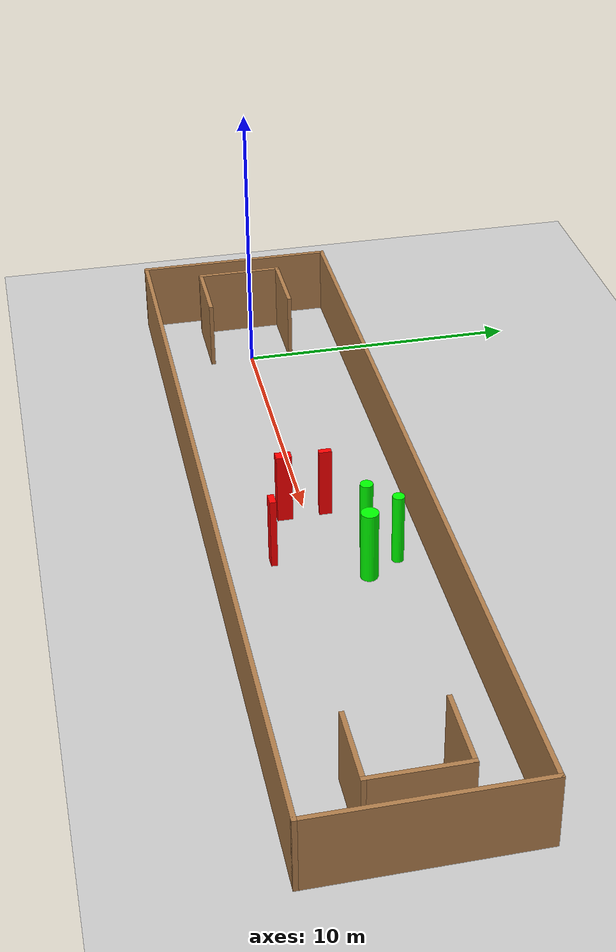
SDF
<sdf version="1.7">
 <world name="default">
  <light name="sun" type="directional">
   <pose>0 0 10 0 -0 0</pose>
   <diffuse>0.8 0.8 0.8 1</diffuse>
   <specular>0.2 0.2 0.2 1</specular>
   <attenuation>
    <range>1000</range>
    <constant>0.9</constant>
    <linear>0.01</linear>
    <quadratic>0.001</quadratic>
   </attenuation>
   <direction>-0.5 0.1 -0.9</direction>
   <spot><inner_angle>0</inner_angle><outer_angle>0</outer_angle><falloff>0</falloff></spot>
  </light>
  <model name="ground_plane">
   <static>1</static>
   <link name="link">
    <collision name="collision">
     <geometry><plane><normal>0 0 1</normal><size>100 100</size></plane></geometry>
     <surface>
      <contact><collide_bitmask>65535</collide_bitmask></contact>
      <friction><ode><mu>100</mu><mu2>50</mu2></ode></friction>
     </surface>
    </collision>
    <visual name="visual">
     <cast_shadows>0</cast_shadows>
     <geometry><plane><normal>0 0 1</normal><size>100 100</size></plane></geometry>
     <material>
      <script><uri>file://media/materials/scripts/gazebo.material</uri><name>Gazebo/Grey</name></script>
     </material>
    </visual>
   </link>
  </model>
  <gravity>0 0 -9.8</gravity>
  <magnetic_field>6e-06 2.3e-05 -4.2e-05</magnetic_field>
  <atmosphere type="adiabatic"/>
  <physics type="ode">
   <max_step_size>0.001</max_step_size>
   <real_time_factor>1</real_time_factor>
   <real_time_update_rate>1000</real_time_update_rate>
  </physics>
  <scene><ambient>0.4 0.4 0.4 1</ambient><background>0.7 0.7 0.7 1</background><shadows>1</shadows></scene>
  <spherical_coordinates>
   <surface_model>EARTH_WGS84</surface_model>
   <latitude_deg>0</latitude_deg>
   <longitude_deg>0</longitude_deg>
   <elevation>0</elevation>
   <heading_deg>0</heading_deg>
  </spherical_coordinates>
  <model name="my_base_walls">
   <link name="Wall_0">
    <collision name="Wall_0_Collision">
     <geometry><box><size>7.15 0.15 2.5</size></box></geometry>
     <pose>0 0 1.25 0 -0 0</pose>
    </collision>
    <visual name="Wall_0_Visual">
     <pose>0 0 1.25 0 -0 0</pose>
     <geometry><box><size>7.15 0.15 2.5</size></box></geometry>
     <material>
      <script><uri>file://media/materials/scripts/gazebo.material</uri><name>Gazebo/Wood</name></script>
      <ambient>1 1 1 1</ambient>
     </material>
     <meta><layer>0</layer></meta>
    </visual>
    <pose>-15 0 0 0 -0 1.5708</pose>
   </link>
   <link name="Wall_10">
    <collision name="Wall_10_Collision">
     <geometry><box><size>2.65 0.15 2.5</size></box></geometry>
     <pose>0 0 1.25 0 -0 0</pose>
    </collision>
    <visual name="Wall_10_Visual">
     <pose>0 0 1.25 0 -0 0</pose>
     <geometry><box><size>2.65 0.15 2.5</size></box></geometry>
     <material>
      <script><uri>file://media/materials/scripts/gazebo.material</uri><name>Gazebo/Wood</name></script>
      <ambient>1 1 1 1</ambient>
     </material>
     <meta><layer>0</layer></meta>
    </visual>
    <pose>-12.75 -1.5 0 0 -0 0</pose>
   </link>
   <link name="Wall_12">
    <collision name="Wall_12_Collision">
     <geometry><box><size>2.65 0.15 2.5</size></box></geometry>
     <pose>0 0 1.25 0 -0 0</pose>
    </collision>
    <visual name="Wall_12_Visual">
     <pose>0 0 1.25 0 -0 0</pose>
     <geometry><box><size>2.65 0.15 2.5</size></box></geometry>
     <material>
      <script><uri>file://media/materials/scripts/gazebo.material</uri><name>Gazebo/Wood</name></script>
      <ambient>1 1 1 1</ambient>
     </material>
     <meta><layer>0</layer></meta>
    </visual>
    <pose>-12.75 1.5 0 0 -0 0</pose>
   </link>
   <link name="Wall_14">
    <collision name="Wall_14_Collision">
     <geometry><box><size>3.15 0.15 2.5</size></box></geometry>
     <pose>0 0 1.25 0 -0 0</pose>
    </collision>
    <visual name="Wall_14_Visual">
     <pose>0 0 1.25 0 -0 0</pose>
     <geometry><box><size>3.15 0.15 2.5</size></box></geometry>
     <material>
      <script><uri>file://media/materials/scripts/gazebo.material</uri><name>Gazebo/Wood</name></script>
      <ambient>1 1 1 1</ambient>
     </material>
     <meta><layer>0</layer></meta>
    </visual>
    <pose>14 0 0 0 -0 -1.5708</pose>
   </link>
   <link name="Wall_15">
    <collision name="Wall_15_Collision">
     <geometry><box><size>2.65 0.15 2.5</size></box></geometry>
     <pose>0 0 1.25 0 -0 0</pose>
    </collision>
    <visual name="Wall_15_Visual">
     <pose>0 0 1.25 0 -0 0</pose>
     <geometry><box><size>2.65 0.15 2.5</size></box></geometry>
     <material>
      <script><uri>file://media/materials/scripts/gazebo.material</uri><name>Gazebo/Wood</name></script>
      <ambient>1 1 1 1</ambient>
     </material>
     <meta><layer>0</layer></meta>
    </visual>
    <pose>12.75 -1.5 0 0 -0 3.14159</pose>
   </link>
   <link name="Wall_17">
    <collision name="Wall_17_Collision">
     <geometry><box><size>2.65 0.15 2.5</size></box></geometry>
     <pose>0 0 1.25 0 -0 0</pose>
    </collision>
    <visual name="Wall_17_Visual">
     <pose>0 0 1.25 0 -0 0</pose>
     <geometry><box><size>2.65 0.15 2.5</size></box></geometry>
     <material>
      <script><uri>file://media/materials/scripts/gazebo.material</uri><name>Gazebo/Wood</name></script>
      <ambient>1 1 1 1</ambient>
     </material>
     <meta><layer>0</layer></meta>
    </visual>
    <pose>12.75 1.5 0 0 -0 3.14159</pose>
   </link>
   <link name="Wall_2">
    <collision name="Wall_2_Collision">
     <geometry><box><size>30.15 0.15 2.5</size></box></geometry>
     <pose>0 0 1.25 0 -0 0</pose>
    </collision>
    <visual name="Wall_2_Visual">
     <pose>0 0 1.25 0 -0 0</pose>
     <geometry><box><size>30.15 0.15 2.5</size></box></geometry>
     <material>
      <script><uri>file://media/materials/scripts/gazebo.material</uri><name>Gazebo/Wood</name></script>
      <ambient>1 1 1 1</ambient>
     </material>
     <meta><layer>0</layer></meta>
    </visual>
    <pose>-0 -3.5 0 0 -0 0</pose>
   </link>
   <link name="Wall_4">
    <collision name="Wall_4_Collision">
     <geometry><box><size>30.15 0.15 2.5</size></box></geometry>
     <pose>0 0 1.25 0 -0 0</pose>
    </collision>
    <visual name="Wall_4_Visual">
     <pose>0 0 1.25 0 -0 0</pose>
     <geometry><box><size>30.15 0.15 2.5</size></box></geometry>
     <material>
      <script><uri>file://media/materials/scripts/gazebo.material</uri><name>Gazebo/Wood</name></script>
      <ambient>1 1 1 1</ambient>
     </material>
     <meta><layer>0</layer></meta>
    </visual>
    <pose>-0 3.5 0 0 -0 0</pose>
   </link>
   <link name="Wall_6">
    <collision name="Wall_6_Collision">
     <geometry><box><size>7.15 0.15 2.5</size></box></geometry>
     <pose>0 0 1.25 0 -0 0</pose>
    </collision>
    <visual name="Wall_6_Visual">
     <pose>0 0 1.25 0 -0 0</pose>
     <geometry><box><size>7.15 0.15 2.5</size></box></geometry>
     <material>
      <script><uri>file://media/materials/scripts/gazebo.material</uri><name>Gazebo/Wood</name></script>
      <ambient>1 1 1 1</ambient>
     </material>
     <meta><layer>0</layer></meta>
    </visual>
    <pose>15 0 0 0 -0 -1.5708</pose>
   </link>
   <link name="Wall_9">
    <collision name="Wall_9_Collision">
     <geometry><box><size>3.15 0.15 2.5</size></box></geometry>
     <pose>0 0 1.25 0 -0 0</pose>
    </collision>
    <visual name="Wall_9_Visual">
     <pose>0 0 1.25 0 -0 0</pose>
     <geometry><box><size>3.15 0.15 2.5</size></box></geometry>
     <material>
      <script><uri>file://media/materials/scripts/gazebo.material</uri><name>Gazebo/Wood</name></script>
      <ambient>1 1 1 1</ambient>
     </material>
     <meta><layer>0</layer></meta>
    </visual>
    <pose>-14 0 0 0 -0 -1.5708</pose>
   </link>
   <static>1</static>
   <pose>11.5 0 0 0 -0 0</pose>
  </model>
  <model name="cylinder1">
   <static>1</static>
   <link name="link">
    <inertial>
     <mass>1</mass>
     <inertia><ixx>0.5</ixx><ixy>0</ixy><ixz>0</ixz><iyy>0.5</iyy><iyz>0</iyz><izz>1</izz></inertia>
    </inertial>
    <collision name="collision">
     <geometry><cylinder><radius>0.29165383438412695</radius><length>2.5</length></cylinder></geometry>
    </collision>
    <visual name="visual">
     <geometry><cylinder><radius>0.29165383438412695</radius><length>2.5</length></cylinder></geometry>
     <material>
      <ambient>0 1 0 1</ambient>
      <diffuse>0 1 0 1</diffuse>
      <specular>0.1 0.1 0.1 1</specular>
      <emissive>0 0 0 0</emissive>
     </material>
    </visual>
   </link>
   <pose>14.243838839480526 1.3237713800123627 1.25 0 0 0</pose>
  </model>
  <model name="cylinder2">
   <static>1</static>
   <link name="link">
    <inertial>
     <mass>1</mass>
     <inertia><ixx>0.5</ixx><ixy>0</ixy><ixz>0</ixz><iyy>0.5</iyy><iyz>0</iyz><izz>1</izz></inertia>
    </inertial>
    <collision name="collision">
     <geometry><cylinder><radius>0.2006082332380608</radius><length>2.5</length></cylinder></geometry>
    </collision>
    <visual name="visual">
     <geometry><cylinder><radius>0.2006082332380608</radius><length>2.5</length></cylinder></geometry>
     <material>
      <ambient>0 1 0 1</ambient>
      <diffuse>0 1 0 1</diffuse>
      <specular>0.1 0.1 0.1 1</specular>
      <emissive>0 0 0 0</emissive>
     </material>
    </visual>
   </link>
   <pose>13.571675702221851 2.4203924417698586 1.25 0 0 0</pose>
  </model>
  <model name="cylinder3">
   <static>1</static>
   <link name="link">
    <inertial>
     <mass>1</mass>
     <inertia><ixx>0.5</ixx><ixy>0</ixy><ixz>0</ixz><iyy>0.5</iyy><iyz>0</iyz><izz>1</izz></inertia>
    </inertial>
    <collision name="collision">
     <geometry><cylinder><radius>0.2163971727731317</radius><length>2.5</length></cylinder></geometry>
    </collision>
    <visual name="visual">
     <geometry><cylinder><radius>0.2163971727731317</radius><length>2.5</length></cylinder></geometry>
     <material>
      <ambient>0 1 0 1</ambient>
      <diffuse>0 1 0 1</diffuse>
      <specular>0.1 0.1 0.1 1</specular>
      <emissive>0 0 0 0</emissive>
     </material>
    </visual>
   </link>
   <pose>12.689039890356222 1.5818780603775462 1.25 0 0 0</pose>
  </model>
  <model name="box1">
   <static>1</static>
   <link name="link">
    <inertial>
     <mass>1</mass>
     <inertia><ixx>0.083</ixx><ixy>0</ixy><ixz>0</ixz><iyy>0.083</iyy><iyz>0</iyz><izz>0.083</izz></inertia>
    </inertial>
    <collision name="collision">
     <geometry><box><size>0.20159631470810033 0.43177683047361937 2.5</size></box></geometry>
    </collision>
    <visual name="visual">
     <geometry><box><size>0.20159631470810033 0.43177683047361937 2.5</size></box></geometry>
     <material>
      <ambient>1 0 0 1</ambient>
      <diffuse>1 0 0 1</diffuse>
      <specular>0.1 0.1 0.1 1</specular>
      <emissive>0 0 0 0</emissive>
     </material>
    </visual>
    <sensor name="my_contact" type="contact">
     <contact><collision>box_collision</collision><topic>__default_topic__</topic></contact>
    </sensor>
   </link>
   <pose>10.525972505004138 0.6710217377827457 1.25 0 0 0</pose>
  </model>
  <model name="box2">
   <static>1</static>
   <link name="link">
    <inertial>
     <mass>1</mass>
     <inertia><ixx>0.083</ixx><ixy>0</ixy><ixz>0</ixz><iyy>0.083</iyy><iyz>0</iyz><izz>0.083</izz></inertia>
    </inertial>
    <collision name="collision">
     <geometry><box><size>0.4482946896486104 0.2182664239431511 2.5</size></box></geometry>
    </collision>
    <visual name="visual">
     <geometry><box><size>0.4482946896486104 0.2182664239431511 2.5</size></box></geometry>
     <material>
      <ambient>1 0 0 1</ambient>
      <diffuse>1 0 0 1</diffuse>
      <specular>0.1 0.1 0.1 1</specular>
      <emissive>0 0 0 0</emissive>
     </material>
    </visual>
    <sensor name="my_contact" type="contact">
     <contact><collision>box_collision</collision><topic>__default_topic__</topic></contact>
    </sensor>
   </link>
   <pose>12.836932762434717 -1.5329552383300913 1.25 0 0 0</pose>
  </model>
  <model name="box3">
   <static>1</static>
   <link name="link">
    <inertial>
     <mass>1</mass>
     <inertia><ixx>0.083</ixx><ixy>0</ixy><ixz>0</ixz><iyy>0.083</iyy><iyz>0</iyz><izz>0.083</izz></inertia>
    </inertial>
    <collision name="collision">
     <geometry><box><size>0.3539399475294271 0.5256573244304013 2.5</size></box></geometry>
    </collision>
    <visual name="visual">
     <geometry><box><size>0.3539399475294271 0.5256573244304013 2.5</size></box></geometry>
     <material>
      <ambient>1 0 0 1</ambient>
      <diffuse>1 0 0 1</diffuse>
      <specular>0.1 0.1 0.1 1</specular>
      <emissive>0 0 0 0</emissive>
     </material>
    </visual>
    <sensor name="my_contact" type="contact">
     <contact><collision>box_collision</collision><topic>__default_topic__</topic></contact>
    </sensor>
   </link>
   <pose>10.49144838174619 -0.7211759170480754 1.25 0 0 0</pose>
  </model>
 </world>
</sdf>
